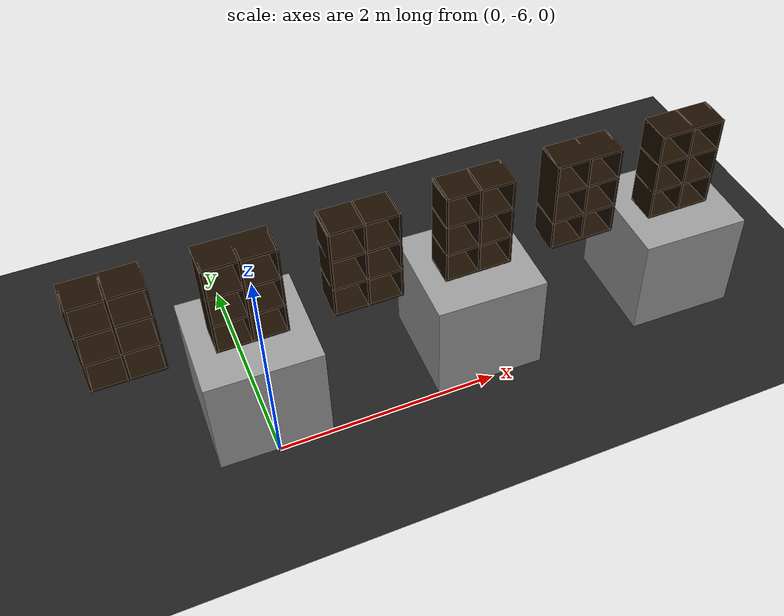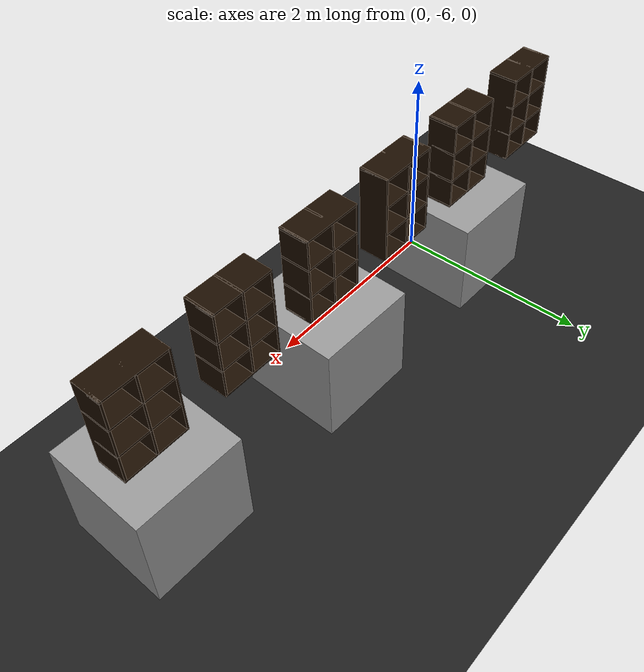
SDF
<sdf version="1.7">
 <world name="default">
  <model name="ground_plane">
   <static>1</static>
   <link name="link">
    <collision name="collision">
     <geometry><plane><normal>0 0 1</normal><size>100 100</size></plane></geometry>
     <surface><friction><ode><mu>100</mu><mu2>50</mu2></ode></friction></surface>
    </collision>
    <visual name="visual">
     <cast_shadows>0</cast_shadows>
     <geometry><plane><normal>0 0 1</normal><size>100 100</size></plane></geometry>
     <material>
      <script><uri>file://media/materials/scripts/gazebo.material</uri><name>Gazebo/BlackTransparent</name></script>
     </material>
    </visual>
   </link>
  </model>
  <model name="unit_box_30">
   <pose>-0.005245 -5.49191 0.5 0 -0 -0.020658</pose>
   <link name="link">
    <inertial>
     <mass>1</mass>
     <inertia>
      <ixx>0.166667</ixx>
      <ixy>0</ixy>
      <ixz>0</ixz>
      <iyy>0.166667</iyy>
      <iyz>0</iyz>
      <izz>0.166667</izz>
     </inertia>
    </inertial>
    <collision name="collision"><geometry><box><size>1 1 1</size></box></geometry></collision>
    <visual name="visual">
     <geometry><box><size>1 1 1</size></box></geometry>
     <material>
      <script><name>Gazebo/Grey</name><uri>file://media/materials/scripts/gazebo.material</uri></script>
     </material>
    </visual>
   </link>
  </model>
  <model name="unit_box_31">
   <pose>1.99556 -5.48651 0.5 0 0 -0.021112</pose>
   <link name="link">
    <inertial>
     <mass>1</mass>
     <inertia>
      <ixx>0.166667</ixx>
      <ixy>0</ixy>
      <ixz>0</ixz>
      <iyy>0.166667</iyy>
      <iyz>0</iyz>
      <izz>0.166667</izz>
     </inertia>
    </inertial>
    <collision name="collision"><geometry><box><size>1 1 1</size></box></geometry></collision>
    <visual name="visual">
     <geometry><box><size>1 1 1</size></box></geometry>
     <material>
      <script><name>Gazebo/Grey</name><uri>file://media/materials/scripts/gazebo.material</uri></script>
     </material>
    </visual>
   </link>
  </model>
  <model name="unit_box_32">
   <pose>3.99636 -5.49751 0.5 0 0 -0.020979</pose>
   <link name="link">
    <inertial>
     <mass>1</mass>
     <inertia>
      <ixx>0.166667</ixx>
      <ixy>0</ixy>
      <ixz>0</ixz>
      <iyy>0.166667</iyy>
      <iyz>0</iyz>
      <izz>0.166667</izz>
     </inertia>
    </inertial>
    <collision name="collision"><geometry><box><size>1 1 1</size></box></geometry></collision>
    <visual name="visual">
     <geometry><box><size>1 1 1</size></box></geometry>
     <material>
      <script><name>Gazebo/Grey</name><uri>file://media/materials/scripts/gazebo.material</uri></script>
     </material>
    </visual>
   </link>
  </model>
  <model name="6_Cube_StorageE_clone_64">
   <link name="Wall_0">
    <pose>0 0 0.01 0 -0 0</pose>
    <inertial>
     <mass>1.6201</mass>
     <inertia><ixx>0.0119</ixx><iyy>0.0631</iyy><izz>0.0513</izz><ixy>0</ixy><ixz>0</ixz><iyz>0</iyz></inertia>
    </inertial>
    <collision name="Wall_0_Collision"><geometry><box><size>0.616 0.296 0.02</size></box></geometry></collision>
    <visual name="Wall_0_Visual">
     <geometry><box><size>0.616 0.296 0.02</size></box></geometry>
     <material>
      <script><uri>file://media/materials/scripts/gazebo.material</uri><name>Gazebo/Grey</name></script>
      <ambient>0.105882 0.0509804 0 1</ambient>
     </material>
    </visual>
   </link>
   <joint name="0_2" type="fixed">
    <pose>-0.308 0 0 0 -0 0</pose>
    <parent>Wall_2</parent>
    <child>Wall_0</child>
    <axis><xyz>1 0 0</xyz><limit><lower>-1e+16</lower><upper>1e+16</upper></limit></axis>
   </joint>
   <joint name="0_12" type="fixed">
    <parent>Wall_12</parent>
    <child>Wall_0</child>
    <axis><xyz>0 0 1</xyz><limit><lower>-1e+16</lower><upper>1e+16</upper></limit></axis>
   </joint>
   <joint name="0_4" type="fixed">
    <pose>0.308 0 0 0 -0 0</pose>
    <parent>Wall_4</parent>
    <child>Wall_0</child>
    <axis><xyz>1 0 0</xyz><limit><lower>-1e+16</lower><upper>1e+16</upper></limit></axis>
   </joint>
   <link name="Wall_10">
    <pose>0 0 0.61 0 -0 0</pose>
    <inertial>
     <mass>1.6201</mass>
     <inertia><ixx>0.0119</ixx><iyy>0.0631</iyy><izz>0.0513</izz><ixy>0</ixy><ixz>0</ixz><iyz>0</iyz></inertia>
    </inertial>
    <collision name="Wall_10_Collision"><geometry><box><size>0.616 0.296 0.02</size></box></geometry></collision>
    <visual name="Wall_10_Visual">
     <geometry><box><size>0.616 0.296 0.02</size></box></geometry>
     <material>
      <script><uri>file://media/materials/scripts/gazebo.material</uri><name>Gazebo/Grey</name></script>
      <ambient>0.105882 0.0509804 0 1</ambient>
     </material>
    </visual>
   </link>
   <joint name="10_2" type="fixed">
    <pose>-0.308 0 0 0 -0 0</pose>
    <parent>Wall_2</parent>
    <child>Wall_10</child>
    <axis><xyz>1 0 0</xyz><limit><lower>-1e+16</lower><upper>1e+16</upper></limit></axis>
   </joint>
   <joint name="10_12" type="fixed">
    <parent>Wall_12</parent>
    <child>Wall_10</child>
    <axis><xyz>0 0 1</xyz><limit><lower>-1e+16</lower><upper>1e+16</upper></limit></axis>
   </joint>
   <joint name="10_4" type="fixed">
    <pose>0.308 0 0 0 -0 0</pose>
    <parent>Wall_4</parent>
    <child>Wall_10</child>
    <axis><xyz>1 0 0</xyz><limit><lower>-1e+16</lower><upper>1e+16</upper></limit></axis>
   </joint>
   <link name="Wall_12">
    <pose>0 0 0.4575 0 -0 0</pose>
    <inertial>
     <mass>2.4065</mass>
     <inertia><ixx>0.0177</ixx><iyy>0.1855</iyy><izz>0.168</izz><ixy>0</ixy><ixz>0</ixz><iyz>0</iyz></inertia>
    </inertial>
    <collision name="Wall_12_Collision"><geometry><box><size>0.02 0.296 0.915</size></box></geometry></collision>
    <visual name="Wall_12_Visual">
     <geometry><box><size>0.02 0.296 0.915</size></box></geometry>
     <material>
      <script><uri>file://media/materials/scripts/gazebo.material</uri><name>Gazebo/Grey</name></script>
      <ambient>0.105882 0.0509804 0 1</ambient>
     </material>
    </visual>
   </link>
   <link name="Wall_2">
    <pose>-0.298 0 0.4575 0 -0 0</pose>
    <inertial>
     <mass>2.4065</mass>
     <inertia><ixx>0.0177</ixx><iyy>0.1855</iyy><izz>0.168</izz><ixy>0</ixy><ixz>0</ixz><iyz>0</iyz></inertia>
    </inertial>
    <collision name="Wall_2_Collision"><geometry><box><size>0.02 0.296 0.915</size></box></geometry></collision>
    <visual name="Wall_2_Visual">
     <geometry><box><size>0.02 0.296 0.915</size></box></geometry>
     <material>
      <script><uri>file://media/materials/scripts/gazebo.material</uri><name>Gazebo/Grey</name></script>
      <ambient>0.105882 0.0509804 0 1</ambient>
     </material>
    </visual>
   </link>
   <link name="Wall_4">
    <pose>0.298 0 0.4575 0 -0 0</pose>
    <inertial>
     <mass>2.4065</mass>
     <inertia><ixx>0.0177</ixx><iyy>0.1855</iyy><izz>0.168</izz><ixy>0</ixy><ixz>0</ixz><iyz>0</iyz></inertia>
    </inertial>
    <collision name="Wall_4_Collision"><geometry><box><size>0.02 0.296 0.915</size></box></geometry></collision>
    <visual name="Wall_4_Visual">
     <geometry><box><size>0.02 0.296 0.915</size></box></geometry>
     <material>
      <script><uri>file://media/materials/scripts/gazebo.material</uri><name>Gazebo/Grey</name></script>
      <ambient>0.105882 0.0509804 0 1</ambient>
     </material>
    </visual>
   </link>
   <link name="Wall_6">
    <pose>0 0 0.905 0 -0 0</pose>
    <inertial>
     <mass>1.6201</mass>
     <inertia><ixx>0.0119</ixx><iyy>0.0631</iyy><izz>0.0513</izz><ixy>0</ixy><ixz>0</ixz><iyz>0</iyz></inertia>
    </inertial>
    <collision name="Wall_6_Collision"><geometry><box><size>0.616 0.296 0.02</size></box></geometry></collision>
    <visual name="Wall_6_Visual">
     <geometry><box><size>0.616 0.296 0.02</size></box></geometry>
     <material>
      <script><uri>file://media/materials/scripts/gazebo.material</uri><name>Gazebo/Grey</name></script>
      <ambient>0.105882 0.0509804 0 1</ambient>
     </material>
    </visual>
   </link>
   <joint name="6_2" type="fixed">
    <pose>-0.308 0 0 0 -0 0</pose>
    <parent>Wall_2</parent>
    <child>Wall_6</child>
    <axis><xyz>2 0 0</xyz><limit><lower>-1e+16</lower><upper>1e+16</upper></limit></axis>
   </joint>
   <joint name="6_12" type="fixed">
    <parent>Wall_12</parent>
    <child>Wall_6</child>
    <axis><xyz>0 0 1</xyz><limit><lower>-1e+16</lower><upper>1e+16</upper></limit></axis>
   </joint>
   <joint name="6_4" type="fixed">
    <pose>0.308 0 0 0 -0 0</pose>
    <parent>Wall_4</parent>
    <child>Wall_6</child>
    <axis><xyz>1 0 0</xyz><limit><lower>-1e+16</lower><upper>1e+16</upper></limit></axis>
   </joint>
   <link name="Wall_8">
    <pose>0 0 0.305 0 -0 0</pose>
    <inertial>
     <mass>1.6201</mass>
     <inertia><ixx>0.0119</ixx><iyy>0.0631</iyy><izz>0.0513</izz><ixy>0</ixy><ixz>0</ixz><iyz>0</iyz></inertia>
    </inertial>
    <collision name="Wall_8_Collision"><geometry><box><size>0.616 0.296 0.02</size></box></geometry></collision>
    <visual name="Wall_8_Visual">
     <geometry><box><size>0.616 0.296 0.02</size></box></geometry>
     <material>
      <script><uri>file://media/materials/scripts/gazebo.material</uri><name>Gazebo/Grey</name></script>
      <ambient>0.105882 0.0509804 0 1</ambient>
     </material>
    </visual>
   </link>
   <joint name="8_2" type="fixed">
    <pose>-0.308 0 0 0 -0 0</pose>
    <parent>Wall_2</parent>
    <child>Wall_8</child>
    <axis><xyz>1 0 0</xyz><limit><lower>-1e+16</lower><upper>1e+16</upper></limit></axis>
   </joint>
   <joint name="8_12" type="fixed">
    <parent>Wall_12</parent>
    <child>Wall_8</child>
    <axis><xyz>0 0 1</xyz><limit><lower>-1e+16</lower><upper>1e+16</upper></limit></axis>
   </joint>
   <joint name="8_4" type="fixed">
    <pose>0.308 0 0 0 -0 0</pose>
    <parent>Wall_4</parent>
    <child>Wall_8</child>
    <axis><xyz>1 0 0</xyz><limit><lower>-1e+16</lower><upper>1e+16</upper></limit></axis>
   </joint>
   <static>1</static>
   <pose>-1 -5.5 1.01 0 -0 0</pose>
  </model>
  <model name="6_Cube_StorageE_clone_65">
   <link name="Wall_0">
    <pose>0 0 0.01 0 -0 0</pose>
    <inertial>
     <mass>1.6201</mass>
     <inertia><ixx>0.0119</ixx><iyy>0.0631</iyy><izz>0.0513</izz><ixy>0</ixy><ixz>0</ixz><iyz>0</iyz></inertia>
    </inertial>
    <collision name="Wall_0_Collision"><geometry><box><size>0.616 0.296 0.02</size></box></geometry></collision>
    <visual name="Wall_0_Visual">
     <geometry><box><size>0.616 0.296 0.02</size></box></geometry>
     <material>
      <script><uri>file://media/materials/scripts/gazebo.material</uri><name>Gazebo/Grey</name></script>
      <ambient>0.105882 0.0509804 0 1</ambient>
     </material>
    </visual>
   </link>
   <joint name="0_2" type="fixed">
    <pose>-0.308 0 0 0 -0 0</pose>
    <parent>Wall_2</parent>
    <child>Wall_0</child>
    <axis><xyz>1 0 0</xyz><limit><lower>-1e+16</lower><upper>1e+16</upper></limit></axis>
   </joint>
   <joint name="0_12" type="fixed">
    <parent>Wall_12</parent>
    <child>Wall_0</child>
    <axis><xyz>0 0 1</xyz><limit><lower>-1e+16</lower><upper>1e+16</upper></limit></axis>
   </joint>
   <joint name="0_4" type="fixed">
    <pose>0.308 0 0 0 -0 0</pose>
    <parent>Wall_4</parent>
    <child>Wall_0</child>
    <axis><xyz>1 0 0</xyz><limit><lower>-1e+16</lower><upper>1e+16</upper></limit></axis>
   </joint>
   <link name="Wall_10">
    <pose>0 0 0.61 0 -0 0</pose>
    <inertial>
     <mass>1.6201</mass>
     <inertia><ixx>0.0119</ixx><iyy>0.0631</iyy><izz>0.0513</izz><ixy>0</ixy><ixz>0</ixz><iyz>0</iyz></inertia>
    </inertial>
    <collision name="Wall_10_Collision"><geometry><box><size>0.616 0.296 0.02</size></box></geometry></collision>
    <visual name="Wall_10_Visual">
     <geometry><box><size>0.616 0.296 0.02</size></box></geometry>
     <material>
      <script><uri>file://media/materials/scripts/gazebo.material</uri><name>Gazebo/Grey</name></script>
      <ambient>0.105882 0.0509804 0 1</ambient>
     </material>
    </visual>
   </link>
   <joint name="10_2" type="fixed">
    <pose>-0.308 0 0 0 -0 0</pose>
    <parent>Wall_2</parent>
    <child>Wall_10</child>
    <axis><xyz>1 0 0</xyz><limit><lower>-1e+16</lower><upper>1e+16</upper></limit></axis>
   </joint>
   <joint name="10_12" type="fixed">
    <parent>Wall_12</parent>
    <child>Wall_10</child>
    <axis><xyz>0 0 1</xyz><limit><lower>-1e+16</lower><upper>1e+16</upper></limit></axis>
   </joint>
   <joint name="10_4" type="fixed">
    <pose>0.308 0 0 0 -0 0</pose>
    <parent>Wall_4</parent>
    <child>Wall_10</child>
    <axis><xyz>1 0 0</xyz><limit><lower>-1e+16</lower><upper>1e+16</upper></limit></axis>
   </joint>
   <link name="Wall_12">
    <pose>0 0 0.4575 0 -0 0</pose>
    <inertial>
     <mass>2.4065</mass>
     <inertia><ixx>0.0177</ixx><iyy>0.1855</iyy><izz>0.168</izz><ixy>0</ixy><ixz>0</ixz><iyz>0</iyz></inertia>
    </inertial>
    <collision name="Wall_12_Collision"><geometry><box><size>0.02 0.296 0.915</size></box></geometry></collision>
    <visual name="Wall_12_Visual">
     <geometry><box><size>0.02 0.296 0.915</size></box></geometry>
     <material>
      <script><uri>file://media/materials/scripts/gazebo.material</uri><name>Gazebo/Grey</name></script>
      <ambient>0.105882 0.0509804 0 1</ambient>
     </material>
    </visual>
   </link>
   <link name="Wall_2">
    <pose>-0.298 0 0.4575 0 -0 0</pose>
    <inertial>
     <mass>2.4065</mass>
     <inertia><ixx>0.0177</ixx><iyy>0.1855</iyy><izz>0.168</izz><ixy>0</ixy><ixz>0</ixz><iyz>0</iyz></inertia>
    </inertial>
    <collision name="Wall_2_Collision"><geometry><box><size>0.02 0.296 0.915</size></box></geometry></collision>
    <visual name="Wall_2_Visual">
     <geometry><box><size>0.02 0.296 0.915</size></box></geometry>
     <material>
      <script><uri>file://media/materials/scripts/gazebo.material</uri><name>Gazebo/Grey</name></script>
      <ambient>0.105882 0.0509804 0 1</ambient>
     </material>
    </visual>
   </link>
   <link name="Wall_4">
    <pose>0.298 0 0.4575 0 -0 0</pose>
    <inertial>
     <mass>2.4065</mass>
     <inertia><ixx>0.0177</ixx><iyy>0.1855</iyy><izz>0.168</izz><ixy>0</ixy><ixz>0</ixz><iyz>0</iyz></inertia>
    </inertial>
    <collision name="Wall_4_Collision"><geometry><box><size>0.02 0.296 0.915</size></box></geometry></collision>
    <visual name="Wall_4_Visual">
     <geometry><box><size>0.02 0.296 0.915</size></box></geometry>
     <material>
      <script><uri>file://media/materials/scripts/gazebo.material</uri><name>Gazebo/Grey</name></script>
      <ambient>0.105882 0.0509804 0 1</ambient>
     </material>
    </visual>
   </link>
   <link name="Wall_6">
    <pose>0 0 0.905 0 -0 0</pose>
    <inertial>
     <mass>1.6201</mass>
     <inertia><ixx>0.0119</ixx><iyy>0.0631</iyy><izz>0.0513</izz><ixy>0</ixy><ixz>0</ixz><iyz>0</iyz></inertia>
    </inertial>
    <collision name="Wall_6_Collision"><geometry><box><size>0.616 0.296 0.02</size></box></geometry></collision>
    <visual name="Wall_6_Visual">
     <geometry><box><size>0.616 0.296 0.02</size></box></geometry>
     <material>
      <script><uri>file://media/materials/scripts/gazebo.material</uri><name>Gazebo/Grey</name></script>
      <ambient>0.105882 0.0509804 0 1</ambient>
     </material>
    </visual>
   </link>
   <joint name="6_2" type="fixed">
    <pose>-0.308 0 0 0 -0 0</pose>
    <parent>Wall_2</parent>
    <child>Wall_6</child>
    <axis><xyz>2 0 0</xyz><limit><lower>-1e+16</lower><upper>1e+16</upper></limit></axis>
   </joint>
   <joint name="6_12" type="fixed">
    <parent>Wall_12</parent>
    <child>Wall_6</child>
    <axis><xyz>0 0 1</xyz><limit><lower>-1e+16</lower><upper>1e+16</upper></limit></axis>
   </joint>
   <joint name="6_4" type="fixed">
    <pose>0.308 0 0 0 -0 0</pose>
    <parent>Wall_4</parent>
    <child>Wall_6</child>
    <axis><xyz>1 0 0</xyz><limit><lower>-1e+16</lower><upper>1e+16</upper></limit></axis>
   </joint>
   <link name="Wall_8">
    <pose>0 0 0.305 0 -0 0</pose>
    <inertial>
     <mass>1.6201</mass>
     <inertia><ixx>0.0119</ixx><iyy>0.0631</iyy><izz>0.0513</izz><ixy>0</ixy><ixz>0</ixz><iyz>0</iyz></inertia>
    </inertial>
    <collision name="Wall_8_Collision"><geometry><box><size>0.616 0.296 0.02</size></box></geometry></collision>
    <visual name="Wall_8_Visual">
     <geometry><box><size>0.616 0.296 0.02</size></box></geometry>
     <material>
      <script><uri>file://media/materials/scripts/gazebo.material</uri><name>Gazebo/Grey</name></script>
      <ambient>0.105882 0.0509804 0 1</ambient>
     </material>
    </visual>
   </link>
   <joint name="8_2" type="fixed">
    <pose>-0.308 0 0 0 -0 0</pose>
    <parent>Wall_2</parent>
    <child>Wall_8</child>
    <axis><xyz>1 0 0</xyz><limit><lower>-1e+16</lower><upper>1e+16</upper></limit></axis>
   </joint>
   <joint name="8_12" type="fixed">
    <parent>Wall_12</parent>
    <child>Wall_8</child>
    <axis><xyz>0 0 1</xyz><limit><lower>-1e+16</lower><upper>1e+16</upper></limit></axis>
   </joint>
   <joint name="8_4" type="fixed">
    <pose>0.308 0 0 0 -0 0</pose>
    <parent>Wall_4</parent>
    <child>Wall_8</child>
    <axis><xyz>1 0 0</xyz><limit><lower>-1e+16</lower><upper>1e+16</upper></limit></axis>
   </joint>
   <static>1</static>
   <pose>0 -5.5 1.01 0 -0 0</pose>
  </model>
  <model name="6_Cube_StorageE_clone_66">
   <link name="Wall_0">
    <pose>0 0 0.01 0 -0 0</pose>
    <inertial>
     <mass>1.6201</mass>
     <inertia><ixx>0.0119</ixx><iyy>0.0631</iyy><izz>0.0513</izz><ixy>0</ixy><ixz>0</ixz><iyz>0</iyz></inertia>
    </inertial>
    <collision name="Wall_0_Collision"><geometry><box><size>0.616 0.296 0.02</size></box></geometry></collision>
    <visual name="Wall_0_Visual">
     <geometry><box><size>0.616 0.296 0.02</size></box></geometry>
     <material>
      <script><uri>file://media/materials/scripts/gazebo.material</uri><name>Gazebo/Grey</name></script>
      <ambient>0.105882 0.0509804 0 1</ambient>
     </material>
    </visual>
   </link>
   <joint name="0_2" type="fixed">
    <pose>-0.308 0 0 0 -0 0</pose>
    <parent>Wall_2</parent>
    <child>Wall_0</child>
    <axis><xyz>1 0 0</xyz><limit><lower>-1e+16</lower><upper>1e+16</upper></limit></axis>
   </joint>
   <joint name="0_12" type="fixed">
    <parent>Wall_12</parent>
    <child>Wall_0</child>
    <axis><xyz>0 0 1</xyz><limit><lower>-1e+16</lower><upper>1e+16</upper></limit></axis>
   </joint>
   <joint name="0_4" type="fixed">
    <pose>0.308 0 0 0 -0 0</pose>
    <parent>Wall_4</parent>
    <child>Wall_0</child>
    <axis><xyz>1 0 0</xyz><limit><lower>-1e+16</lower><upper>1e+16</upper></limit></axis>
   </joint>
   <link name="Wall_10">
    <pose>0 0 0.61 0 -0 0</pose>
    <inertial>
     <mass>1.6201</mass>
     <inertia><ixx>0.0119</ixx><iyy>0.0631</iyy><izz>0.0513</izz><ixy>0</ixy><ixz>0</ixz><iyz>0</iyz></inertia>
    </inertial>
    <collision name="Wall_10_Collision"><geometry><box><size>0.616 0.296 0.02</size></box></geometry></collision>
    <visual name="Wall_10_Visual">
     <geometry><box><size>0.616 0.296 0.02</size></box></geometry>
     <material>
      <script><uri>file://media/materials/scripts/gazebo.material</uri><name>Gazebo/Grey</name></script>
      <ambient>0.105882 0.0509804 0 1</ambient>
     </material>
    </visual>
   </link>
   <joint name="10_2" type="fixed">
    <pose>-0.308 0 0 0 -0 0</pose>
    <parent>Wall_2</parent>
    <child>Wall_10</child>
    <axis><xyz>1 0 0</xyz><limit><lower>-1e+16</lower><upper>1e+16</upper></limit></axis>
   </joint>
   <joint name="10_12" type="fixed">
    <parent>Wall_12</parent>
    <child>Wall_10</child>
    <axis><xyz>0 0 1</xyz><limit><lower>-1e+16</lower><upper>1e+16</upper></limit></axis>
   </joint>
   <joint name="10_4" type="fixed">
    <pose>0.308 0 0 0 -0 0</pose>
    <parent>Wall_4</parent>
    <child>Wall_10</child>
    <axis><xyz>1 0 0</xyz><limit><lower>-1e+16</lower><upper>1e+16</upper></limit></axis>
   </joint>
   <link name="Wall_12">
    <pose>0 0 0.4575 0 -0 0</pose>
    <inertial>
     <mass>2.4065</mass>
     <inertia><ixx>0.0177</ixx><iyy>0.1855</iyy><izz>0.168</izz><ixy>0</ixy><ixz>0</ixz><iyz>0</iyz></inertia>
    </inertial>
    <collision name="Wall_12_Collision"><geometry><box><size>0.02 0.296 0.915</size></box></geometry></collision>
    <visual name="Wall_12_Visual">
     <geometry><box><size>0.02 0.296 0.915</size></box></geometry>
     <material>
      <script><uri>file://media/materials/scripts/gazebo.material</uri><name>Gazebo/Grey</name></script>
      <ambient>0.105882 0.0509804 0 1</ambient>
     </material>
    </visual>
   </link>
   <link name="Wall_2">
    <pose>-0.298 0 0.4575 0 -0 0</pose>
    <inertial>
     <mass>2.4065</mass>
     <inertia><ixx>0.0177</ixx><iyy>0.1855</iyy><izz>0.168</izz><ixy>0</ixy><ixz>0</ixz><iyz>0</iyz></inertia>
    </inertial>
    <collision name="Wall_2_Collision"><geometry><box><size>0.02 0.296 0.915</size></box></geometry></collision>
    <visual name="Wall_2_Visual">
     <geometry><box><size>0.02 0.296 0.915</size></box></geometry>
     <material>
      <script><uri>file://media/materials/scripts/gazebo.material</uri><name>Gazebo/Grey</name></script>
      <ambient>0.105882 0.0509804 0 1</ambient>
     </material>
    </visual>
   </link>
   <link name="Wall_4">
    <pose>0.298 0 0.4575 0 -0 0</pose>
    <inertial>
     <mass>2.4065</mass>
     <inertia><ixx>0.0177</ixx><iyy>0.1855</iyy><izz>0.168</izz><ixy>0</ixy><ixz>0</ixz><iyz>0</iyz></inertia>
    </inertial>
    <collision name="Wall_4_Collision"><geometry><box><size>0.02 0.296 0.915</size></box></geometry></collision>
    <visual name="Wall_4_Visual">
     <geometry><box><size>0.02 0.296 0.915</size></box></geometry>
     <material>
      <script><uri>file://media/materials/scripts/gazebo.material</uri><name>Gazebo/Grey</name></script>
      <ambient>0.105882 0.0509804 0 1</ambient>
     </material>
    </visual>
   </link>
   <link name="Wall_6">
    <pose>0 0 0.905 0 -0 0</pose>
    <inertial>
     <mass>1.6201</mass>
     <inertia><ixx>0.0119</ixx><iyy>0.0631</iyy><izz>0.0513</izz><ixy>0</ixy><ixz>0</ixz><iyz>0</iyz></inertia>
    </inertial>
    <collision name="Wall_6_Collision"><geometry><box><size>0.616 0.296 0.02</size></box></geometry></collision>
    <visual name="Wall_6_Visual">
     <geometry><box><size>0.616 0.296 0.02</size></box></geometry>
     <material>
      <script><uri>file://media/materials/scripts/gazebo.material</uri><name>Gazebo/Grey</name></script>
      <ambient>0.105882 0.0509804 0 1</ambient>
     </material>
    </visual>
   </link>
   <joint name="6_2" type="fixed">
    <pose>-0.308 0 0 0 -0 0</pose>
    <parent>Wall_2</parent>
    <child>Wall_6</child>
    <axis><xyz>2 0 0</xyz><limit><lower>-1e+16</lower><upper>1e+16</upper></limit></axis>
   </joint>
   <joint name="6_12" type="fixed">
    <parent>Wall_12</parent>
    <child>Wall_6</child>
    <axis><xyz>0 0 1</xyz><limit><lower>-1e+16</lower><upper>1e+16</upper></limit></axis>
   </joint>
   <joint name="6_4" type="fixed">
    <pose>0.308 0 0 0 -0 0</pose>
    <parent>Wall_4</parent>
    <child>Wall_6</child>
    <axis><xyz>1 0 0</xyz><limit><lower>-1e+16</lower><upper>1e+16</upper></limit></axis>
   </joint>
   <link name="Wall_8">
    <pose>0 0 0.305 0 -0 0</pose>
    <inertial>
     <mass>1.6201</mass>
     <inertia><ixx>0.0119</ixx><iyy>0.0631</iyy><izz>0.0513</izz><ixy>0</ixy><ixz>0</ixz><iyz>0</iyz></inertia>
    </inertial>
    <collision name="Wall_8_Collision"><geometry><box><size>0.616 0.296 0.02</size></box></geometry></collision>
    <visual name="Wall_8_Visual">
     <geometry><box><size>0.616 0.296 0.02</size></box></geometry>
     <material>
      <script><uri>file://media/materials/scripts/gazebo.material</uri><name>Gazebo/Grey</name></script>
      <ambient>0.105882 0.0509804 0 1</ambient>
     </material>
    </visual>
   </link>
   <joint name="8_2" type="fixed">
    <pose>-0.308 0 0 0 -0 0</pose>
    <parent>Wall_2</parent>
    <child>Wall_8</child>
    <axis><xyz>1 0 0</xyz><limit><lower>-1e+16</lower><upper>1e+16</upper></limit></axis>
   </joint>
   <joint name="8_12" type="fixed">
    <parent>Wall_12</parent>
    <child>Wall_8</child>
    <axis><xyz>0 0 1</xyz><limit><lower>-1e+16</lower><upper>1e+16</upper></limit></axis>
   </joint>
   <joint name="8_4" type="fixed">
    <pose>0.308 0 0 0 -0 0</pose>
    <parent>Wall_4</parent>
    <child>Wall_8</child>
    <axis><xyz>1 0 0</xyz><limit><lower>-1e+16</lower><upper>1e+16</upper></limit></axis>
   </joint>
   <static>1</static>
   <pose>1 -5.5 1.01 0 -0 0</pose>
  </model>
  <model name="6_Cube_StorageE_clone_67">
   <link name="Wall_0">
    <pose>0 0 0.01 0 -0 0</pose>
    <inertial>
     <mass>1.6201</mass>
     <inertia><ixx>0.0119</ixx><iyy>0.0631</iyy><izz>0.0513</izz><ixy>0</ixy><ixz>0</ixz><iyz>0</iyz></inertia>
    </inertial>
    <collision name="Wall_0_Collision"><geometry><box><size>0.616 0.296 0.02</size></box></geometry></collision>
    <visual name="Wall_0_Visual">
     <geometry><box><size>0.616 0.296 0.02</size></box></geometry>
     <material>
      <script><uri>file://media/materials/scripts/gazebo.material</uri><name>Gazebo/Grey</name></script>
      <ambient>0.105882 0.0509804 0 1</ambient>
     </material>
    </visual>
   </link>
   <joint name="0_2" type="fixed">
    <pose>-0.308 0 0 0 -0 0</pose>
    <parent>Wall_2</parent>
    <child>Wall_0</child>
    <axis><xyz>1 0 0</xyz><limit><lower>-1e+16</lower><upper>1e+16</upper></limit></axis>
   </joint>
   <joint name="0_12" type="fixed">
    <parent>Wall_12</parent>
    <child>Wall_0</child>
    <axis><xyz>0 0 1</xyz><limit><lower>-1e+16</lower><upper>1e+16</upper></limit></axis>
   </joint>
   <joint name="0_4" type="fixed">
    <pose>0.308 0 0 0 -0 0</pose>
    <parent>Wall_4</parent>
    <child>Wall_0</child>
    <axis><xyz>1 0 0</xyz><limit><lower>-1e+16</lower><upper>1e+16</upper></limit></axis>
   </joint>
   <link name="Wall_10">
    <pose>0 0 0.61 0 -0 0</pose>
    <inertial>
     <mass>1.6201</mass>
     <inertia><ixx>0.0119</ixx><iyy>0.0631</iyy><izz>0.0513</izz><ixy>0</ixy><ixz>0</ixz><iyz>0</iyz></inertia>
    </inertial>
    <collision name="Wall_10_Collision"><geometry><box><size>0.616 0.296 0.02</size></box></geometry></collision>
    <visual name="Wall_10_Visual">
     <geometry><box><size>0.616 0.296 0.02</size></box></geometry>
     <material>
      <script><uri>file://media/materials/scripts/gazebo.material</uri><name>Gazebo/Grey</name></script>
      <ambient>0.105882 0.0509804 0 1</ambient>
     </material>
    </visual>
   </link>
   <joint name="10_2" type="fixed">
    <pose>-0.308 0 0 0 -0 0</pose>
    <parent>Wall_2</parent>
    <child>Wall_10</child>
    <axis><xyz>1 0 0</xyz><limit><lower>-1e+16</lower><upper>1e+16</upper></limit></axis>
   </joint>
   <joint name="10_12" type="fixed">
    <parent>Wall_12</parent>
    <child>Wall_10</child>
    <axis><xyz>0 0 1</xyz><limit><lower>-1e+16</lower><upper>1e+16</upper></limit></axis>
   </joint>
   <joint name="10_4" type="fixed">
    <pose>0.308 0 0 0 -0 0</pose>
    <parent>Wall_4</parent>
    <child>Wall_10</child>
    <axis><xyz>1 0 0</xyz><limit><lower>-1e+16</lower><upper>1e+16</upper></limit></axis>
   </joint>
   <link name="Wall_12">
    <pose>0 0 0.4575 0 -0 0</pose>
    <inertial>
     <mass>2.4065</mass>
     <inertia><ixx>0.0177</ixx><iyy>0.1855</iyy><izz>0.168</izz><ixy>0</ixy><ixz>0</ixz><iyz>0</iyz></inertia>
    </inertial>
    <collision name="Wall_12_Collision"><geometry><box><size>0.02 0.296 0.915</size></box></geometry></collision>
    <visual name="Wall_12_Visual">
     <geometry><box><size>0.02 0.296 0.915</size></box></geometry>
     <material>
      <script><uri>file://media/materials/scripts/gazebo.material</uri><name>Gazebo/Grey</name></script>
      <ambient>0.105882 0.0509804 0 1</ambient>
     </material>
    </visual>
   </link>
   <link name="Wall_2">
    <pose>-0.298 0 0.4575 0 -0 0</pose>
    <inertial>
     <mass>2.4065</mass>
     <inertia><ixx>0.0177</ixx><iyy>0.1855</iyy><izz>0.168</izz><ixy>0</ixy><ixz>0</ixz><iyz>0</iyz></inertia>
    </inertial>
    <collision name="Wall_2_Collision"><geometry><box><size>0.02 0.296 0.915</size></box></geometry></collision>
    <visual name="Wall_2_Visual">
     <geometry><box><size>0.02 0.296 0.915</size></box></geometry>
     <material>
      <script><uri>file://media/materials/scripts/gazebo.material</uri><name>Gazebo/Grey</name></script>
      <ambient>0.105882 0.0509804 0 1</ambient>
     </material>
    </visual>
   </link>
   <link name="Wall_4">
    <pose>0.298 0 0.4575 0 -0 0</pose>
    <inertial>
     <mass>2.4065</mass>
     <inertia><ixx>0.0177</ixx><iyy>0.1855</iyy><izz>0.168</izz><ixy>0</ixy><ixz>0</ixz><iyz>0</iyz></inertia>
    </inertial>
    <collision name="Wall_4_Collision"><geometry><box><size>0.02 0.296 0.915</size></box></geometry></collision>
    <visual name="Wall_4_Visual">
     <geometry><box><size>0.02 0.296 0.915</size></box></geometry>
     <material>
      <script><uri>file://media/materials/scripts/gazebo.material</uri><name>Gazebo/Grey</name></script>
      <ambient>0.105882 0.0509804 0 1</ambient>
     </material>
    </visual>
   </link>
   <link name="Wall_6">
    <pose>0 0 0.905 0 -0 0</pose>
    <inertial>
     <mass>1.6201</mass>
     <inertia><ixx>0.0119</ixx><iyy>0.0631</iyy><izz>0.0513</izz><ixy>0</ixy><ixz>0</ixz><iyz>0</iyz></inertia>
    </inertial>
    <collision name="Wall_6_Collision"><geometry><box><size>0.616 0.296 0.02</size></box></geometry></collision>
    <visual name="Wall_6_Visual">
     <geometry><box><size>0.616 0.296 0.02</size></box></geometry>
     <material>
      <script><uri>file://media/materials/scripts/gazebo.material</uri><name>Gazebo/Grey</name></script>
      <ambient>0.105882 0.0509804 0 1</ambient>
     </material>
    </visual>
   </link>
   <joint name="6_2" type="fixed">
    <pose>-0.308 0 0 0 -0 0</pose>
    <parent>Wall_2</parent>
    <child>Wall_6</child>
    <axis><xyz>2 0 0</xyz><limit><lower>-1e+16</lower><upper>1e+16</upper></limit></axis>
   </joint>
   <joint name="6_12" type="fixed">
    <parent>Wall_12</parent>
    <child>Wall_6</child>
    <axis><xyz>0 0 1</xyz><limit><lower>-1e+16</lower><upper>1e+16</upper></limit></axis>
   </joint>
   <joint name="6_4" type="fixed">
    <pose>0.308 0 0 0 -0 0</pose>
    <parent>Wall_4</parent>
    <child>Wall_6</child>
    <axis><xyz>1 0 0</xyz><limit><lower>-1e+16</lower><upper>1e+16</upper></limit></axis>
   </joint>
   <link name="Wall_8">
    <pose>0 0 0.305 0 -0 0</pose>
    <inertial>
     <mass>1.6201</mass>
     <inertia><ixx>0.0119</ixx><iyy>0.0631</iyy><izz>0.0513</izz><ixy>0</ixy><ixz>0</ixz><iyz>0</iyz></inertia>
    </inertial>
    <collision name="Wall_8_Collision"><geometry><box><size>0.616 0.296 0.02</size></box></geometry></collision>
    <visual name="Wall_8_Visual">
     <geometry><box><size>0.616 0.296 0.02</size></box></geometry>
     <material>
      <script><uri>file://media/materials/scripts/gazebo.material</uri><name>Gazebo/Grey</name></script>
      <ambient>0.105882 0.0509804 0 1</ambient>
     </material>
    </visual>
   </link>
   <joint name="8_2" type="fixed">
    <pose>-0.308 0 0 0 -0 0</pose>
    <parent>Wall_2</parent>
    <child>Wall_8</child>
    <axis><xyz>1 0 0</xyz><limit><lower>-1e+16</lower><upper>1e+16</upper></limit></axis>
   </joint>
   <joint name="8_12" type="fixed">
    <parent>Wall_12</parent>
    <child>Wall_8</child>
    <axis><xyz>0 0 1</xyz><limit><lower>-1e+16</lower><upper>1e+16</upper></limit></axis>
   </joint>
   <joint name="8_4" type="fixed">
    <pose>0.308 0 0 0 -0 0</pose>
    <parent>Wall_4</parent>
    <child>Wall_8</child>
    <axis><xyz>1 0 0</xyz><limit><lower>-1e+16</lower><upper>1e+16</upper></limit></axis>
   </joint>
   <static>1</static>
   <pose>2 -5.5 1.01 0 -0 0</pose>
  </model>
  <model name="6_Cube_StorageE_clone_68">
   <link name="Wall_0">
    <pose>0 0 0.01 0 -0 0</pose>
    <inertial>
     <mass>1.6201</mass>
     <inertia><ixx>0.0119</ixx><iyy>0.0631</iyy><izz>0.0513</izz><ixy>0</ixy><ixz>0</ixz><iyz>0</iyz></inertia>
    </inertial>
    <collision name="Wall_0_Collision"><geometry><box><size>0.616 0.296 0.02</size></box></geometry></collision>
    <visual name="Wall_0_Visual">
     <geometry><box><size>0.616 0.296 0.02</size></box></geometry>
     <material>
      <script><uri>file://media/materials/scripts/gazebo.material</uri><name>Gazebo/Grey</name></script>
      <ambient>0.105882 0.0509804 0 1</ambient>
     </material>
    </visual>
   </link>
   <joint name="0_2" type="fixed">
    <pose>-0.308 0 0 0 -0 0</pose>
    <parent>Wall_2</parent>
    <child>Wall_0</child>
    <axis><xyz>1 0 0</xyz><limit><lower>-1e+16</lower><upper>1e+16</upper></limit></axis>
   </joint>
   <joint name="0_12" type="fixed">
    <parent>Wall_12</parent>
    <child>Wall_0</child>
    <axis><xyz>0 0 1</xyz><limit><lower>-1e+16</lower><upper>1e+16</upper></limit></axis>
   </joint>
   <joint name="0_4" type="fixed">
    <pose>0.308 0 0 0 -0 0</pose>
    <parent>Wall_4</parent>
    <child>Wall_0</child>
    <axis><xyz>1 0 0</xyz><limit><lower>-1e+16</lower><upper>1e+16</upper></limit></axis>
   </joint>
   <link name="Wall_10">
    <pose>0 0 0.61 0 -0 0</pose>
    <inertial>
     <mass>1.6201</mass>
     <inertia><ixx>0.0119</ixx><iyy>0.0631</iyy><izz>0.0513</izz><ixy>0</ixy><ixz>0</ixz><iyz>0</iyz></inertia>
    </inertial>
    <collision name="Wall_10_Collision"><geometry><box><size>0.616 0.296 0.02</size></box></geometry></collision>
    <visual name="Wall_10_Visual">
     <geometry><box><size>0.616 0.296 0.02</size></box></geometry>
     <material>
      <script><uri>file://media/materials/scripts/gazebo.material</uri><name>Gazebo/Grey</name></script>
      <ambient>0.105882 0.0509804 0 1</ambient>
     </material>
    </visual>
   </link>
   <joint name="10_2" type="fixed">
    <pose>-0.308 0 0 0 -0 0</pose>
    <parent>Wall_2</parent>
    <child>Wall_10</child>
    <axis><xyz>1 0 0</xyz><limit><lower>-1e+16</lower><upper>1e+16</upper></limit></axis>
   </joint>
   <joint name="10_12" type="fixed">
    <parent>Wall_12</parent>
    <child>Wall_10</child>
    <axis><xyz>0 0 1</xyz><limit><lower>-1e+16</lower><upper>1e+16</upper></limit></axis>
   </joint>
   <joint name="10_4" type="fixed">
    <pose>0.308 0 0 0 -0 0</pose>
    <parent>Wall_4</parent>
    <child>Wall_10</child>
    <axis><xyz>1 0 0</xyz><limit><lower>-1e+16</lower><upper>1e+16</upper></limit></axis>
   </joint>
   <link name="Wall_12">
    <pose>0 0 0.4575 0 -0 0</pose>
    <inertial>
     <mass>2.4065</mass>
     <inertia><ixx>0.0177</ixx><iyy>0.1855</iyy><izz>0.168</izz><ixy>0</ixy><ixz>0</ixz><iyz>0</iyz></inertia>
    </inertial>
    <collision name="Wall_12_Collision"><geometry><box><size>0.02 0.296 0.915</size></box></geometry></collision>
    <visual name="Wall_12_Visual">
     <geometry><box><size>0.02 0.296 0.915</size></box></geometry>
     <material>
      <script><uri>file://media/materials/scripts/gazebo.material</uri><name>Gazebo/Grey</name></script>
      <ambient>0.105882 0.0509804 0 1</ambient>
     </material>
    </visual>
   </link>
   <link name="Wall_2">
    <pose>-0.298 0 0.4575 0 -0 0</pose>
    <inertial>
     <mass>2.4065</mass>
     <inertia><ixx>0.0177</ixx><iyy>0.1855</iyy><izz>0.168</izz><ixy>0</ixy><ixz>0</ixz><iyz>0</iyz></inertia>
    </inertial>
    <collision name="Wall_2_Collision"><geometry><box><size>0.02 0.296 0.915</size></box></geometry></collision>
    <visual name="Wall_2_Visual">
     <geometry><box><size>0.02 0.296 0.915</size></box></geometry>
     <material>
      <script><uri>file://media/materials/scripts/gazebo.material</uri><name>Gazebo/Grey</name></script>
      <ambient>0.105882 0.0509804 0 1</ambient>
     </material>
    </visual>
   </link>
   <link name="Wall_4">
    <pose>0.298 0 0.4575 0 -0 0</pose>
    <inertial>
     <mass>2.4065</mass>
     <inertia><ixx>0.0177</ixx><iyy>0.1855</iyy><izz>0.168</izz><ixy>0</ixy><ixz>0</ixz><iyz>0</iyz></inertia>
    </inertial>
    <collision name="Wall_4_Collision"><geometry><box><size>0.02 0.296 0.915</size></box></geometry></collision>
    <visual name="Wall_4_Visual">
     <geometry><box><size>0.02 0.296 0.915</size></box></geometry>
     <material>
      <script><uri>file://media/materials/scripts/gazebo.material</uri><name>Gazebo/Grey</name></script>
      <ambient>0.105882 0.0509804 0 1</ambient>
     </material>
    </visual>
   </link>
   <link name="Wall_6">
    <pose>0 0 0.905 0 -0 0</pose>
    <inertial>
     <mass>1.6201</mass>
     <inertia><ixx>0.0119</ixx><iyy>0.0631</iyy><izz>0.0513</izz><ixy>0</ixy><ixz>0</ixz><iyz>0</iyz></inertia>
    </inertial>
    <collision name="Wall_6_Collision"><geometry><box><size>0.616 0.296 0.02</size></box></geometry></collision>
    <visual name="Wall_6_Visual">
     <geometry><box><size>0.616 0.296 0.02</size></box></geometry>
     <material>
      <script><uri>file://media/materials/scripts/gazebo.material</uri><name>Gazebo/Grey</name></script>
      <ambient>0.105882 0.0509804 0 1</ambient>
     </material>
    </visual>
   </link>
   <joint name="6_2" type="fixed">
    <pose>-0.308 0 0 0 -0 0</pose>
    <parent>Wall_2</parent>
    <child>Wall_6</child>
    <axis><xyz>2 0 0</xyz><limit><lower>-1e+16</lower><upper>1e+16</upper></limit></axis>
   </joint>
   <joint name="6_12" type="fixed">
    <parent>Wall_12</parent>
    <child>Wall_6</child>
    <axis><xyz>0 0 1</xyz><limit><lower>-1e+16</lower><upper>1e+16</upper></limit></axis>
   </joint>
   <joint name="6_4" type="fixed">
    <pose>0.308 0 0 0 -0 0</pose>
    <parent>Wall_4</parent>
    <child>Wall_6</child>
    <axis><xyz>1 0 0</xyz><limit><lower>-1e+16</lower><upper>1e+16</upper></limit></axis>
   </joint>
   <link name="Wall_8">
    <pose>0 0 0.305 0 -0 0</pose>
    <inertial>
     <mass>1.6201</mass>
     <inertia><ixx>0.0119</ixx><iyy>0.0631</iyy><izz>0.0513</izz><ixy>0</ixy><ixz>0</ixz><iyz>0</iyz></inertia>
    </inertial>
    <collision name="Wall_8_Collision"><geometry><box><size>0.616 0.296 0.02</size></box></geometry></collision>
    <visual name="Wall_8_Visual">
     <geometry><box><size>0.616 0.296 0.02</size></box></geometry>
     <material>
      <script><uri>file://media/materials/scripts/gazebo.material</uri><name>Gazebo/Grey</name></script>
      <ambient>0.105882 0.0509804 0 1</ambient>
     </material>
    </visual>
   </link>
   <joint name="8_2" type="fixed">
    <pose>-0.308 0 0 0 -0 0</pose>
    <parent>Wall_2</parent>
    <child>Wall_8</child>
    <axis><xyz>1 0 0</xyz><limit><lower>-1e+16</lower><upper>1e+16</upper></limit></axis>
   </joint>
   <joint name="8_12" type="fixed">
    <parent>Wall_12</parent>
    <child>Wall_8</child>
    <axis><xyz>0 0 1</xyz><limit><lower>-1e+16</lower><upper>1e+16</upper></limit></axis>
   </joint>
   <joint name="8_4" type="fixed">
    <pose>0.308 0 0 0 -0 0</pose>
    <parent>Wall_4</parent>
    <child>Wall_8</child>
    <axis><xyz>1 0 0</xyz><limit><lower>-1e+16</lower><upper>1e+16</upper></limit></axis>
   </joint>
   <static>1</static>
   <pose>3 -5.5 1.01 0 -0 0</pose>
  </model>
  <model name="6_Cube_StorageE_clone_69">
   <link name="Wall_0">
    <pose>0 0 0.01 0 -0 0</pose>
    <inertial>
     <mass>1.6201</mass>
     <inertia><ixx>0.0119</ixx><iyy>0.0631</iyy><izz>0.0513</izz><ixy>0</ixy><ixz>0</ixz><iyz>0</iyz></inertia>
    </inertial>
    <collision name="Wall_0_Collision"><geometry><box><size>0.616 0.296 0.02</size></box></geometry></collision>
    <visual name="Wall_0_Visual">
     <geometry><box><size>0.616 0.296 0.02</size></box></geometry>
     <material>
      <script><uri>file://media/materials/scripts/gazebo.material</uri><name>Gazebo/Grey</name></script>
      <ambient>0.105882 0.0509804 0 1</ambient>
     </material>
    </visual>
   </link>
   <joint name="0_2" type="fixed">
    <pose>-0.308 0 0 0 -0 0</pose>
    <parent>Wall_2</parent>
    <child>Wall_0</child>
    <axis><xyz>1 0 0</xyz><limit><lower>-1e+16</lower><upper>1e+16</upper></limit></axis>
   </joint>
   <joint name="0_12" type="fixed">
    <parent>Wall_12</parent>
    <child>Wall_0</child>
    <axis><xyz>0 0 1</xyz><limit><lower>-1e+16</lower><upper>1e+16</upper></limit></axis>
   </joint>
   <joint name="0_4" type="fixed">
    <pose>0.308 0 0 0 -0 0</pose>
    <parent>Wall_4</parent>
    <child>Wall_0</child>
    <axis><xyz>1 0 0</xyz><limit><lower>-1e+16</lower><upper>1e+16</upper></limit></axis>
   </joint>
   <link name="Wall_10">
    <pose>0 0 0.61 0 -0 0</pose>
    <inertial>
     <mass>1.6201</mass>
     <inertia><ixx>0.0119</ixx><iyy>0.0631</iyy><izz>0.0513</izz><ixy>0</ixy><ixz>0</ixz><iyz>0</iyz></inertia>
    </inertial>
    <collision name="Wall_10_Collision"><geometry><box><size>0.616 0.296 0.02</size></box></geometry></collision>
    <visual name="Wall_10_Visual">
     <geometry><box><size>0.616 0.296 0.02</size></box></geometry>
     <material>
      <script><uri>file://media/materials/scripts/gazebo.material</uri><name>Gazebo/Grey</name></script>
      <ambient>0.105882 0.0509804 0 1</ambient>
     </material>
    </visual>
   </link>
   <joint name="10_2" type="fixed">
    <pose>-0.308 0 0 0 -0 0</pose>
    <parent>Wall_2</parent>
    <child>Wall_10</child>
    <axis><xyz>1 0 0</xyz><limit><lower>-1e+16</lower><upper>1e+16</upper></limit></axis>
   </joint>
   <joint name="10_12" type="fixed">
    <parent>Wall_12</parent>
    <child>Wall_10</child>
    <axis><xyz>0 0 1</xyz><limit><lower>-1e+16</lower><upper>1e+16</upper></limit></axis>
   </joint>
   <joint name="10_4" type="fixed">
    <pose>0.308 0 0 0 -0 0</pose>
    <parent>Wall_4</parent>
    <child>Wall_10</child>
    <axis><xyz>1 0 0</xyz><limit><lower>-1e+16</lower><upper>1e+16</upper></limit></axis>
   </joint>
   <link name="Wall_12">
    <pose>0 0 0.4575 0 -0 0</pose>
    <inertial>
     <mass>2.4065</mass>
     <inertia><ixx>0.0177</ixx><iyy>0.1855</iyy><izz>0.168</izz><ixy>0</ixy><ixz>0</ixz><iyz>0</iyz></inertia>
    </inertial>
    <collision name="Wall_12_Collision"><geometry><box><size>0.02 0.296 0.915</size></box></geometry></collision>
    <visual name="Wall_12_Visual">
     <geometry><box><size>0.02 0.296 0.915</size></box></geometry>
     <material>
      <script><uri>file://media/materials/scripts/gazebo.material</uri><name>Gazebo/Grey</name></script>
      <ambient>0.105882 0.0509804 0 1</ambient>
     </material>
    </visual>
   </link>
   <link name="Wall_2">
    <pose>-0.298 0 0.4575 0 -0 0</pose>
    <inertial>
     <mass>2.4065</mass>
     <inertia><ixx>0.0177</ixx><iyy>0.1855</iyy><izz>0.168</izz><ixy>0</ixy><ixz>0</ixz><iyz>0</iyz></inertia>
    </inertial>
    <collision name="Wall_2_Collision"><geometry><box><size>0.02 0.296 0.915</size></box></geometry></collision>
    <visual name="Wall_2_Visual">
     <geometry><box><size>0.02 0.296 0.915</size></box></geometry>
     <material>
      <script><uri>file://media/materials/scripts/gazebo.material</uri><name>Gazebo/Grey</name></script>
      <ambient>0.105882 0.0509804 0 1</ambient>
     </material>
    </visual>
   </link>
   <link name="Wall_4">
    <pose>0.298 0 0.4575 0 -0 0</pose>
    <inertial>
     <mass>2.4065</mass>
     <inertia><ixx>0.0177</ixx><iyy>0.1855</iyy><izz>0.168</izz><ixy>0</ixy><ixz>0</ixz><iyz>0</iyz></inertia>
    </inertial>
    <collision name="Wall_4_Collision"><geometry><box><size>0.02 0.296 0.915</size></box></geometry></collision>
    <visual name="Wall_4_Visual">
     <geometry><box><size>0.02 0.296 0.915</size></box></geometry>
     <material>
      <script><uri>file://media/materials/scripts/gazebo.material</uri><name>Gazebo/Grey</name></script>
      <ambient>0.105882 0.0509804 0 1</ambient>
     </material>
    </visual>
   </link>
   <link name="Wall_6">
    <pose>0 0 0.905 0 -0 0</pose>
    <inertial>
     <mass>1.6201</mass>
     <inertia><ixx>0.0119</ixx><iyy>0.0631</iyy><izz>0.0513</izz><ixy>0</ixy><ixz>0</ixz><iyz>0</iyz></inertia>
    </inertial>
    <collision name="Wall_6_Collision"><geometry><box><size>0.616 0.296 0.02</size></box></geometry></collision>
    <visual name="Wall_6_Visual">
     <geometry><box><size>0.616 0.296 0.02</size></box></geometry>
     <material>
      <script><uri>file://media/materials/scripts/gazebo.material</uri><name>Gazebo/Grey</name></script>
      <ambient>0.105882 0.0509804 0 1</ambient>
     </material>
    </visual>
   </link>
   <joint name="6_2" type="fixed">
    <pose>-0.308 0 0 0 -0 0</pose>
    <parent>Wall_2</parent>
    <child>Wall_6</child>
    <axis><xyz>2 0 0</xyz><limit><lower>-1e+16</lower><upper>1e+16</upper></limit></axis>
   </joint>
   <joint name="6_12" type="fixed">
    <parent>Wall_12</parent>
    <child>Wall_6</child>
    <axis><xyz>0 0 1</xyz><limit><lower>-1e+16</lower><upper>1e+16</upper></limit></axis>
   </joint>
   <joint name="6_4" type="fixed">
    <pose>0.308 0 0 0 -0 0</pose>
    <parent>Wall_4</parent>
    <child>Wall_6</child>
    <axis><xyz>1 0 0</xyz><limit><lower>-1e+16</lower><upper>1e+16</upper></limit></axis>
   </joint>
   <link name="Wall_8">
    <pose>0 0 0.305 0 -0 0</pose>
    <inertial>
     <mass>1.6201</mass>
     <inertia><ixx>0.0119</ixx><iyy>0.0631</iyy><izz>0.0513</izz><ixy>0</ixy><ixz>0</ixz><iyz>0</iyz></inertia>
    </inertial>
    <collision name="Wall_8_Collision"><geometry><box><size>0.616 0.296 0.02</size></box></geometry></collision>
    <visual name="Wall_8_Visual">
     <geometry><box><size>0.616 0.296 0.02</size></box></geometry>
     <material>
      <script><uri>file://media/materials/scripts/gazebo.material</uri><name>Gazebo/Grey</name></script>
      <ambient>0.105882 0.0509804 0 1</ambient>
     </material>
    </visual>
   </link>
   <joint name="8_2" type="fixed">
    <pose>-0.308 0 0 0 -0 0</pose>
    <parent>Wall_2</parent>
    <child>Wall_8</child>
    <axis><xyz>1 0 0</xyz><limit><lower>-1e+16</lower><upper>1e+16</upper></limit></axis>
   </joint>
   <joint name="8_12" type="fixed">
    <parent>Wall_12</parent>
    <child>Wall_8</child>
    <axis><xyz>0 0 1</xyz><limit><lower>-1e+16</lower><upper>1e+16</upper></limit></axis>
   </joint>
   <joint name="8_4" type="fixed">
    <pose>0.308 0 0 0 -0 0</pose>
    <parent>Wall_4</parent>
    <child>Wall_8</child>
    <axis><xyz>1 0 0</xyz><limit><lower>-1e+16</lower><upper>1e+16</upper></limit></axis>
   </joint>
   <static>1</static>
   <pose>4 -5.5 1.01 0 -0 0</pose>
  </model>
 </world>
</sdf>
